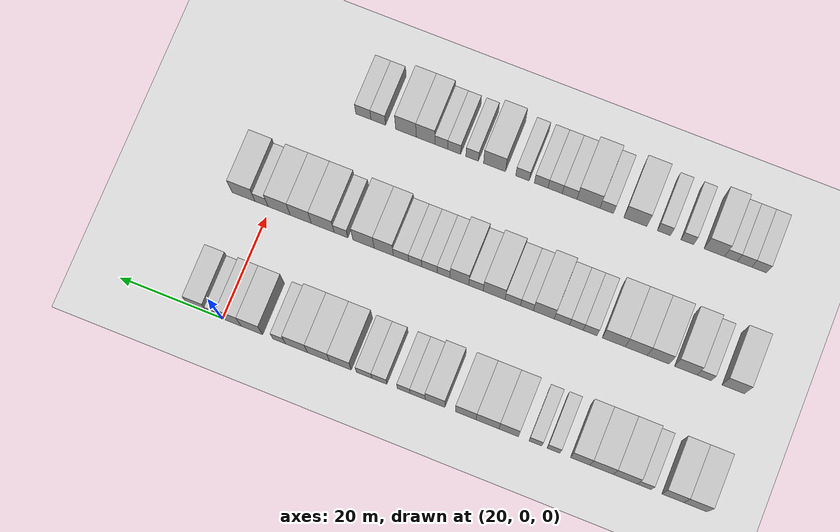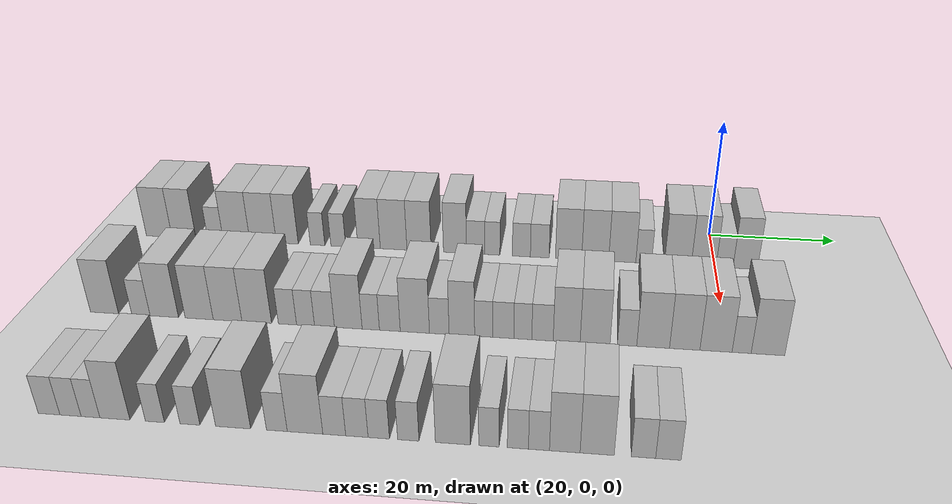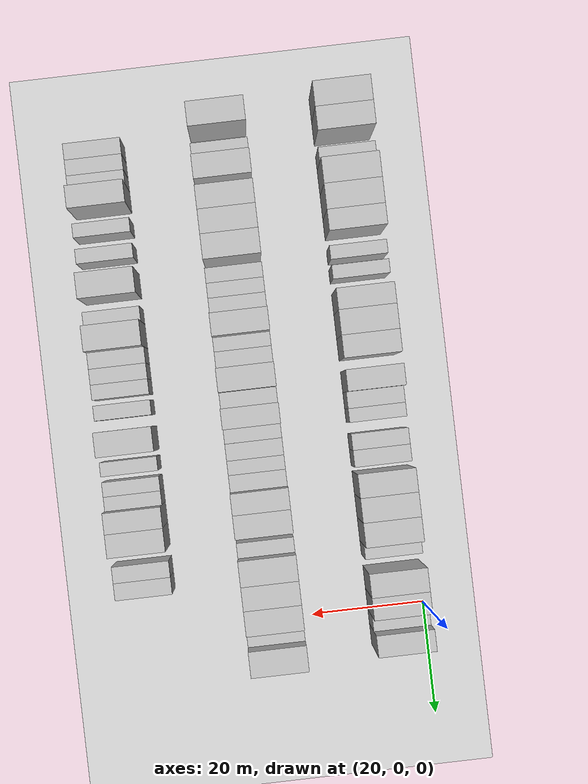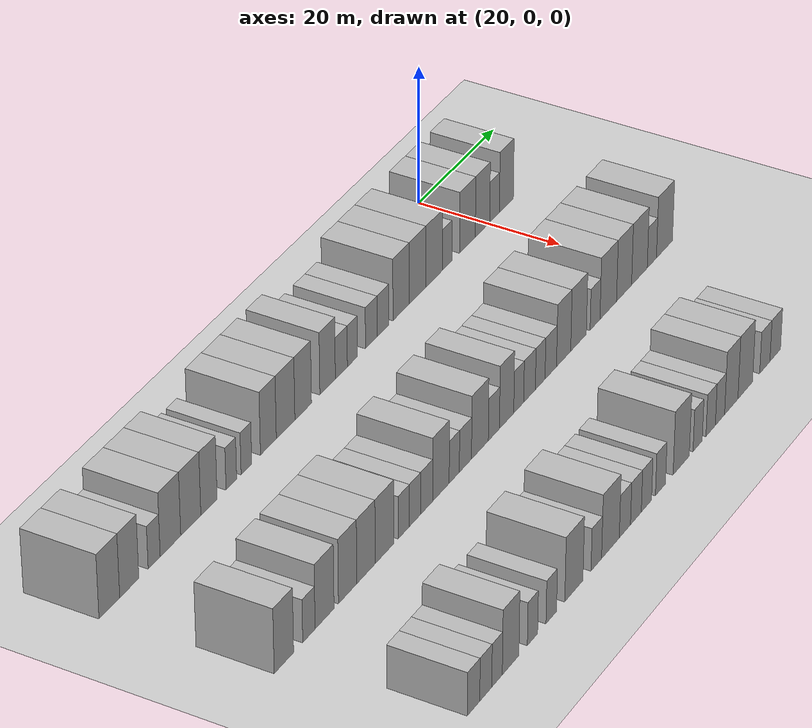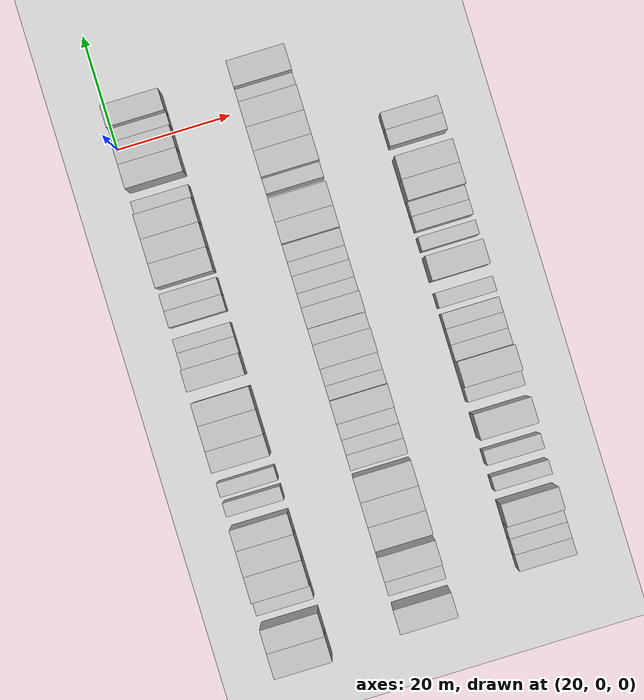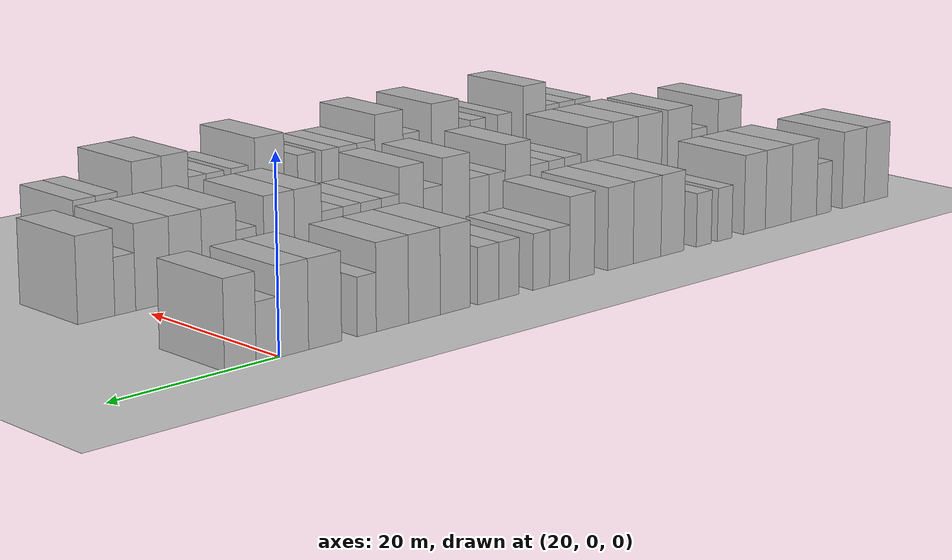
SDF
<sdf version="1.6">
 <world name="default">
  <include><name>ground_plane_1</name><uri>model://HANNAS_ground_plane</uri></include>
  <model name="building_77">
   <static>1</static>
   <pose>25.0000 -90.0252 0 0.000000 0.000000 0.000000</pose>
   <link name="link">
    <pose>0 0 4.50 0 0 0</pose>
    <collision name="collision"><geometry><box><size>10.0000 4.3675 9.0000</size></box></geometry></collision>
    <visual name="visual">
     <cast_shadows>0</cast_shadows>
     <geometry><box><size>10.0000 4.3675 9.0000</size></box></geometry>
     <material>
      <script>
       <uri>model://HANNAS_wall/materials/scripts</uri>
       <uri>model://HANNAS_wall/materials/textures</uri>
       <name>vrc/HANNAS_wall</name>
      </script>
     </material>
    </visual>
   </link>
  </model>
  <model name="building_78">
   <static>1</static>
   <pose>25.0000 -85.8086 0 0.000000 0.000000 0.000000</pose>
   <link name="link">
    <pose>0 0 4.50 0 0 0</pose>
    <collision name="collision"><geometry><box><size>10.0000 4.0658 9.0000</size></box></geometry></collision>
    <visual name="visual">
     <cast_shadows>0</cast_shadows>
     <geometry><box><size>10.0000 4.0658 9.0000</size></box></geometry>
     <material>
      <script>
       <uri>model://HANNAS_wall/materials/scripts</uri>
       <uri>model://HANNAS_wall/materials/textures</uri>
       <name>vrc/HANNAS_wall</name>
      </script>
     </material>
    </visual>
   </link>
  </model>
  <model name="building_79">
   <static>1</static>
   <pose>25.0000 -80.4712 0 0.000000 0.000000 0.000000</pose>
   <link name="link">
    <pose>0 0 3.00 0 0 0</pose>
    <collision name="collision"><geometry><box><size>10.0000 2.6091 6.0000</size></box></geometry></collision>
    <visual name="visual">
     <cast_shadows>0</cast_shadows>
     <geometry><box><size>10.0000 2.6091 6.0000</size></box></geometry>
     <material>
      <script>
       <uri>model://HANNAS_wall/materials/scripts</uri>
       <uri>model://HANNAS_wall/materials/textures</uri>
       <name>vrc/HANNAS_wall</name>
      </script>
     </material>
    </visual>
   </link>
  </model>
  <model name="building_80">
   <static>1</static>
   <pose>25.0000 -76.9223 0 0.000000 0.000000 0.000000</pose>
   <link name="link">
    <pose>0 0 4.50 0 0 0</pose>
    <collision name="collision"><geometry><box><size>10.0000 4.4886 9.0000</size></box></geometry></collision>
    <visual name="visual">
     <cast_shadows>0</cast_shadows>
     <geometry><box><size>10.0000 4.4886 9.0000</size></box></geometry>
     <material>
      <script>
       <uri>model://HANNAS_wall/materials/scripts</uri>
       <uri>model://HANNAS_wall/materials/textures</uri>
       <name>vrc/HANNAS_wall</name>
      </script>
     </material>
    </visual>
   </link>
  </model>
  <model name="building_81">
   <static>1</static>
   <pose>25.0000 -72.4578 0 0.000000 0.000000 0.000000</pose>
   <link name="link">
    <pose>0 0 4.50 0 0 0</pose>
    <collision name="collision"><geometry><box><size>10.0000 4.4404 9.0000</size></box></geometry></collision>
    <visual name="visual">
     <cast_shadows>0</cast_shadows>
     <geometry><box><size>10.0000 4.4404 9.0000</size></box></geometry>
     <material>
      <script>
       <uri>model://HANNAS_wall/materials/scripts</uri>
       <uri>model://HANNAS_wall/materials/textures</uri>
       <name>vrc/HANNAS_wall</name>
      </script>
     </material>
    </visual>
   </link>
  </model>
  <model name="building_82">
   <static>1</static>
   <pose>25.0000 -68.4177 0 0.000000 0.000000 0.000000</pose>
   <link name="link">
    <pose>0 0 4.50 0 0 0</pose>
    <collision name="collision"><geometry><box><size>10.0000 3.6399 9.0000</size></box></geometry></collision>
    <visual name="visual">
     <cast_shadows>0</cast_shadows>
     <geometry><box><size>10.0000 3.6399 9.0000</size></box></geometry>
     <material>
      <script>
       <uri>model://HANNAS_wall/materials/scripts</uri>
       <uri>model://HANNAS_wall/materials/textures</uri>
       <name>vrc/HANNAS_wall</name>
      </script>
     </material>
    </visual>
   </link>
  </model>
  <model name="building_83">
   <static>1</static>
   <pose>25.0000 -63.3919 0 0.000000 0.000000 0.000000</pose>
   <link name="link">
    <pose>0 0 3.00 0 0 0</pose>
    <collision name="collision"><geometry><box><size>10.0000 2.4118 6.0000</size></box></geometry></collision>
    <visual name="visual">
     <cast_shadows>0</cast_shadows>
     <geometry><box><size>10.0000 2.4118 6.0000</size></box></geometry>
     <material>
      <script>
       <uri>model://HANNAS_wall/materials/scripts</uri>
       <uri>model://HANNAS_wall/materials/textures</uri>
       <name>vrc/HANNAS_wall</name>
      </script>
     </material>
    </visual>
   </link>
  </model>
  <model name="building_84">
   <static>1</static>
   <pose>25.0000 -59.9668 0 0.000000 0.000000 0.000000</pose>
   <link name="link">
    <pose>0 0 3.00 0 0 0</pose>
    <collision name="collision"><geometry><box><size>10.0000 2.4384 6.0000</size></box></geometry></collision>
    <visual name="visual">
     <cast_shadows>0</cast_shadows>
     <geometry><box><size>10.0000 2.4384 6.0000</size></box></geometry>
     <material>
      <script>
       <uri>model://HANNAS_wall/materials/scripts</uri>
       <uri>model://HANNAS_wall/materials/textures</uri>
       <name>vrc/HANNAS_wall</name>
      </script>
     </material>
    </visual>
   </link>
  </model>
  <model name="building_85">
   <static>1</static>
   <pose>25.0000 -54.9041 0 0.000000 0.000000 0.000000</pose>
   <link name="link">
    <pose>0 0 4.50 0 0 0</pose>
    <collision name="collision"><geometry><box><size>10.0000 3.6870 9.0000</size></box></geometry></collision>
    <visual name="visual">
     <cast_shadows>0</cast_shadows>
     <geometry><box><size>10.0000 3.6870 9.0000</size></box></geometry>
     <material>
      <script>
       <uri>model://HANNAS_wall/materials/scripts</uri>
       <uri>model://HANNAS_wall/materials/textures</uri>
       <name>vrc/HANNAS_wall</name>
      </script>
     </material>
    </visual>
   </link>
  </model>
  <model name="building_86">
   <static>1</static>
   <pose>25.0000 -50.8852 0 0.000000 0.000000 0.000000</pose>
   <link name="link">
    <pose>0 0 4.50 0 0 0</pose>
    <collision name="collision"><geometry><box><size>10.0000 4.3508 9.0000</size></box></geometry></collision>
    <visual name="visual">
     <cast_shadows>0</cast_shadows>
     <geometry><box><size>10.0000 4.3508 9.0000</size></box></geometry>
     <material>
      <script>
       <uri>model://HANNAS_wall/materials/scripts</uri>
       <uri>model://HANNAS_wall/materials/textures</uri>
       <name>vrc/HANNAS_wall</name>
      </script>
     </material>
    </visual>
   </link>
  </model>
  <model name="building_87">
   <static>1</static>
   <pose>25.0000 -46.7449 0 0.000000 0.000000 0.000000</pose>
   <link name="link">
    <pose>0 0 4.50 0 0 0</pose>
    <collision name="collision"><geometry><box><size>10.0000 3.9298 9.0000</size></box></geometry></collision>
    <visual name="visual">
     <cast_shadows>0</cast_shadows>
     <geometry><box><size>10.0000 3.9298 9.0000</size></box></geometry>
     <material>
      <script>
       <uri>model://HANNAS_wall/materials/scripts</uri>
       <uri>model://HANNAS_wall/materials/textures</uri>
       <name>vrc/HANNAS_wall</name>
      </script>
     </material>
    </visual>
   </link>
  </model>
  <model name="building_88">
   <static>1</static>
   <pose>25.0000 -40.9170 0 0.000000 0.000000 0.000000</pose>
   <link name="link">
    <pose>0 0 4.50 0 0 0</pose>
    <collision name="collision"><geometry><box><size>10.0000 3.7259 9.0000</size></box></geometry></collision>
    <visual name="visual">
     <cast_shadows>0</cast_shadows>
     <geometry><box><size>10.0000 3.7259 9.0000</size></box></geometry>
     <material>
      <script>
       <uri>model://HANNAS_wall/materials/scripts</uri>
       <uri>model://HANNAS_wall/materials/textures</uri>
       <name>vrc/HANNAS_wall</name>
      </script>
     </material>
    </visual>
   </link>
  </model>
  <model name="building_89">
   <static>1</static>
   <pose>25.0000 -37.5912 0 0.000000 0.000000 0.000000</pose>
   <link name="link">
    <pose>0 0 3.00 0 0 0</pose>
    <collision name="collision"><geometry><box><size>10.0000 2.9258 6.0000</size></box></geometry></collision>
    <visual name="visual">
     <cast_shadows>0</cast_shadows>
     <geometry><box><size>10.0000 2.9258 6.0000</size></box></geometry>
     <material>
      <script>
       <uri>model://HANNAS_wall/materials/scripts</uri>
       <uri>model://HANNAS_wall/materials/textures</uri>
       <name>vrc/HANNAS_wall</name>
      </script>
     </material>
    </visual>
   </link>
  </model>
  <model name="building_90">
   <static>1</static>
   <pose>25.0000 -34.9142 0 0.000000 0.000000 0.000000</pose>
   <link name="link">
    <pose>0 0 3.00 0 0 0</pose>
    <collision name="collision"><geometry><box><size>10.0000 2.4282 6.0000</size></box></geometry></collision>
    <visual name="visual">
     <cast_shadows>0</cast_shadows>
     <geometry><box><size>10.0000 2.4282 6.0000</size></box></geometry>
     <material>
      <script>
       <uri>model://HANNAS_wall/materials/scripts</uri>
       <uri>model://HANNAS_wall/materials/textures</uri>
       <name>vrc/HANNAS_wall</name>
      </script>
     </material>
    </visual>
   </link>
  </model>
  <model name="building_91">
   <static>1</static>
   <pose>25.0000 -30.2657 0 0.000000 0.000000 0.000000</pose>
   <link name="link">
    <pose>0 0 3.00 0 0 0</pose>
    <collision name="collision"><geometry><box><size>10.0000 2.8688 6.0000</size></box></geometry></collision>
    <visual name="visual">
     <cast_shadows>0</cast_shadows>
     <geometry><box><size>10.0000 2.8688 6.0000</size></box></geometry>
     <material>
      <script>
       <uri>model://HANNAS_wall/materials/scripts</uri>
       <uri>model://HANNAS_wall/materials/textures</uri>
       <name>vrc/HANNAS_wall</name>
      </script>
     </material>
    </visual>
   </link>
  </model>
  <model name="building_92">
   <static>1</static>
   <pose>25.0000 -27.3481 0 0.000000 0.000000 0.000000</pose>
   <link name="link">
    <pose>0 0 3.00 0 0 0</pose>
    <collision name="collision"><geometry><box><size>10.0000 2.9665 6.0000</size></box></geometry></collision>
    <visual name="visual">
     <cast_shadows>0</cast_shadows>
     <geometry><box><size>10.0000 2.9665 6.0000</size></box></geometry>
     <material>
      <script>
       <uri>model://HANNAS_wall/materials/scripts</uri>
       <uri>model://HANNAS_wall/materials/textures</uri>
       <name>vrc/HANNAS_wall</name>
      </script>
     </material>
    </visual>
   </link>
  </model>
  <model name="building_93">
   <static>1</static>
   <pose>25.0000 -22.7915 0 0.000000 0.000000 0.000000</pose>
   <link name="link">
    <pose>0 0 4.50 0 0 0</pose>
    <collision name="collision"><geometry><box><size>10.0000 4.1466 9.0000</size></box></geometry></collision>
    <visual name="visual">
     <cast_shadows>0</cast_shadows>
     <geometry><box><size>10.0000 4.1466 9.0000</size></box></geometry>
     <material>
      <script>
       <uri>model://HANNAS_wall/materials/scripts</uri>
       <uri>model://HANNAS_wall/materials/textures</uri>
       <name>vrc/HANNAS_wall</name>
      </script>
     </material>
    </visual>
   </link>
  </model>
  <model name="building_94">
   <static>1</static>
   <pose>25.0000 -18.5953 0 0.000000 0.000000 0.000000</pose>
   <link name="link">
    <pose>0 0 4.50 0 0 0</pose>
    <collision name="collision"><geometry><box><size>10.0000 4.2456 9.0000</size></box></geometry></collision>
    <visual name="visual">
     <cast_shadows>0</cast_shadows>
     <geometry><box><size>10.0000 4.2456 9.0000</size></box></geometry>
     <material>
      <script>
       <uri>model://HANNAS_wall/materials/scripts</uri>
       <uri>model://HANNAS_wall/materials/textures</uri>
       <name>vrc/HANNAS_wall</name>
      </script>
     </material>
    </visual>
   </link>
  </model>
  <model name="building_95">
   <static>1</static>
   <pose>25.0000 -14.3478 0 0.000000 0.000000 0.000000</pose>
   <link name="link">
    <pose>0 0 4.50 0 0 0</pose>
    <collision name="collision"><geometry><box><size>10.0000 4.2494 9.0000</size></box></geometry></collision>
    <visual name="visual">
     <cast_shadows>0</cast_shadows>
     <geometry><box><size>10.0000 4.2494 9.0000</size></box></geometry>
     <material>
      <script>
       <uri>model://HANNAS_wall/materials/scripts</uri>
       <uri>model://HANNAS_wall/materials/textures</uri>
       <name>vrc/HANNAS_wall</name>
      </script>
     </material>
    </visual>
   </link>
  </model>
  <model name="building_96">
   <static>1</static>
   <pose>25.0000 -10.9969 0 0.000000 0.000000 0.000000</pose>
   <link name="link">
    <pose>0 0 3.00 0 0 0</pose>
    <collision name="collision"><geometry><box><size>10.0000 2.4524 6.0000</size></box></geometry></collision>
    <visual name="visual">
     <cast_shadows>0</cast_shadows>
     <geometry><box><size>10.0000 2.4524 6.0000</size></box></geometry>
     <material>
      <script>
       <uri>model://HANNAS_wall/materials/scripts</uri>
       <uri>model://HANNAS_wall/materials/textures</uri>
       <name>vrc/HANNAS_wall</name>
      </script>
     </material>
    </visual>
   </link>
  </model>
  <model name="building_97">
   <static>1</static>
   <pose>25.0000 -5.6992 0 0.000000 0.000000 0.000000</pose>
   <link name="link">
    <pose>0 0 4.50 0 0 0</pose>
    <collision name="collision"><geometry><box><size>10.0000 4.1429 9.0000</size></box></geometry></collision>
    <visual name="visual">
     <cast_shadows>0</cast_shadows>
     <geometry><box><size>10.0000 4.1429 9.0000</size></box></geometry>
     <material>
      <script>
       <uri>model://HANNAS_wall/materials/scripts</uri>
       <uri>model://HANNAS_wall/materials/textures</uri>
       <name>vrc/HANNAS_wall</name>
      </script>
     </material>
    </visual>
   </link>
  </model>
  <model name="building_98">
   <static>1</static>
   <pose>25.0000 -1.7094 0 0.000000 0.000000 0.000000</pose>
   <link name="link">
    <pose>0 0 4.50 0 0 0</pose>
    <collision name="collision"><geometry><box><size>10.0000 3.8367 9.0000</size></box></geometry></collision>
    <visual name="visual">
     <cast_shadows>0</cast_shadows>
     <geometry><box><size>10.0000 3.8367 9.0000</size></box></geometry>
     <material>
      <script>
       <uri>model://HANNAS_wall/materials/scripts</uri>
       <uri>model://HANNAS_wall/materials/textures</uri>
       <name>vrc/HANNAS_wall</name>
      </script>
     </material>
    </visual>
   </link>
  </model>
  <model name="building_99">
   <static>1</static>
   <pose>25.0000 1.5023 0 0.000000 0.000000 0.000000</pose>
   <link name="link">
    <pose>0 0 3.00 0 0 0</pose>
    <collision name="collision"><geometry><box><size>10.0000 2.5868 6.0000</size></box></geometry></collision>
    <visual name="visual">
     <cast_shadows>0</cast_shadows>
     <geometry><box><size>10.0000 2.5868 6.0000</size></box></geometry>
     <material>
      <script>
       <uri>model://HANNAS_wall/materials/scripts</uri>
       <uri>model://HANNAS_wall/materials/textures</uri>
       <name>vrc/HANNAS_wall</name>
      </script>
     </material>
    </visual>
   </link>
  </model>
  <model name="building_100">
   <static>1</static>
   <pose>25.0000 4.6795 0 0.000000 0.000000 0.000000</pose>
   <link name="link">
    <pose>0 0 4.50 0 0 0</pose>
    <collision name="collision"><geometry><box><size>10.0000 3.7677 9.0000</size></box></geometry></collision>
    <visual name="visual">
     <cast_shadows>0</cast_shadows>
     <geometry><box><size>10.0000 3.7677 9.0000</size></box></geometry>
     <material>
      <script>
       <uri>model://HANNAS_wall/materials/scripts</uri>
       <uri>model://HANNAS_wall/materials/textures</uri>
       <name>vrc/HANNAS_wall</name>
      </script>
     </material>
    </visual>
   </link>
  </model>
  <model name="building_272">
   <static>1</static>
   <pose>47.0000 -89.0937 0 0.000000 0.000000 0.000000</pose>
   <link name="link">
    <pose>0 0 4.50 0 0 0</pose>
    <collision name="collision"><geometry><box><size>10.0000 4.2462 9.0000</size></box></geometry></collision>
    <visual name="visual">
     <cast_shadows>0</cast_shadows>
     <geometry><box><size>10.0000 4.2462 9.0000</size></box></geometry>
     <material>
      <script>
       <uri>model://HANNAS_wall/materials/scripts</uri>
       <uri>model://HANNAS_wall/materials/textures</uri>
       <name>vrc/HANNAS_wall</name>
      </script>
     </material>
    </visual>
   </link>
  </model>
  <model name="building_273">
   <static>1</static>
   <pose>47.0000 -83.5964 0 0.000000 0.000000 0.000000</pose>
   <link name="link">
    <pose>0 0 3.00 0 0 0</pose>
    <collision name="collision"><geometry><box><size>10.0000 2.7483 6.0000</size></box></geometry></collision>
    <visual name="visual">
     <cast_shadows>0</cast_shadows>
     <geometry><box><size>10.0000 2.7483 6.0000</size></box></geometry>
     <material>
      <script>
       <uri>model://HANNAS_wall/materials/scripts</uri>
       <uri>model://HANNAS_wall/materials/textures</uri>
       <name>vrc/HANNAS_wall</name>
      </script>
     </material>
    </visual>
   </link>
  </model>
  <model name="building_274">
   <static>1</static>
   <pose>47.0000 -80.0994 0 0.000000 0.000000 0.000000</pose>
   <link name="link">
    <pose>0 0 4.50 0 0 0</pose>
    <collision name="collision"><geometry><box><size>10.0000 4.2457 9.0000</size></box></geometry></collision>
    <visual name="visual">
     <cast_shadows>0</cast_shadows>
     <geometry><box><size>10.0000 4.2457 9.0000</size></box></geometry>
     <material>
      <script>
       <uri>model://HANNAS_wall/materials/scripts</uri>
       <uri>model://HANNAS_wall/materials/textures</uri>
       <name>vrc/HANNAS_wall</name>
      </script>
     </material>
    </visual>
   </link>
  </model>
  <model name="building_275">
   <static>1</static>
   <pose>47.0000 -74.8886 0 0.000000 0.000000 0.000000</pose>
   <link name="link">
    <pose>0 0 4.50 0 0 0</pose>
    <collision name="collision"><geometry><box><size>10.0000 4.1760 9.0000</size></box></geometry></collision>
    <visual name="visual">
     <cast_shadows>0</cast_shadows>
     <geometry><box><size>10.0000 4.1760 9.0000</size></box></geometry>
     <material>
      <script>
       <uri>model://HANNAS_wall/materials/scripts</uri>
       <uri>model://HANNAS_wall/materials/textures</uri>
       <name>vrc/HANNAS_wall</name>
      </script>
     </material>
    </visual>
   </link>
  </model>
  <model name="building_276">
   <static>1</static>
   <pose>47.0000 -70.6801 0 0.000000 0.000000 0.000000</pose>
   <link name="link">
    <pose>0 0 4.50 0 0 0</pose>
    <collision name="collision"><geometry><box><size>10.0000 4.2410 9.0000</size></box></geometry></collision>
    <visual name="visual">
     <cast_shadows>0</cast_shadows>
     <geometry><box><size>10.0000 4.2410 9.0000</size></box></geometry>
     <material>
      <script>
       <uri>model://HANNAS_wall/materials/scripts</uri>
       <uri>model://HANNAS_wall/materials/textures</uri>
       <name>vrc/HANNAS_wall</name>
      </script>
     </material>
    </visual>
   </link>
  </model>
  <model name="building_277">
   <static>1</static>
   <pose>47.0000 -66.3810 0 0.000000 0.000000 0.000000</pose>
   <link name="link">
    <pose>0 0 4.50 0 0 0</pose>
    <collision name="collision"><geometry><box><size>10.0000 4.3572 9.0000</size></box></geometry></collision>
    <visual name="visual">
     <cast_shadows>0</cast_shadows>
     <geometry><box><size>10.0000 4.3572 9.0000</size></box></geometry>
     <material>
      <script>
       <uri>model://HANNAS_wall/materials/scripts</uri>
       <uri>model://HANNAS_wall/materials/textures</uri>
       <name>vrc/HANNAS_wall</name>
      </script>
     </material>
    </visual>
   </link>
  </model>
  <model name="building_278">
   <static>1</static>
   <pose>47.0000 -61.8732 0 0.000000 0.000000 0.000000</pose>
   <link name="link">
    <pose>0 0 3.00 0 0 0</pose>
    <collision name="collision"><geometry><box><size>10.0000 2.6585 6.0000</size></box></geometry></collision>
    <visual name="visual">
     <cast_shadows>0</cast_shadows>
     <geometry><box><size>10.0000 2.6585 6.0000</size></box></geometry>
     <material>
      <script>
       <uri>model://HANNAS_wall/materials/scripts</uri>
       <uri>model://HANNAS_wall/materials/textures</uri>
       <name>vrc/HANNAS_wall</name>
      </script>
     </material>
    </visual>
   </link>
  </model>
  <model name="building_279">
   <static>1</static>
   <pose>47.0000 -59.2358 0 0.000000 0.000000 0.000000</pose>
   <link name="link">
    <pose>0 0 3.00 0 0 0</pose>
    <collision name="collision"><geometry><box><size>10.0000 2.6162 6.0000</size></box></geometry></collision>
    <visual name="visual">
     <cast_shadows>0</cast_shadows>
     <geometry><box><size>10.0000 2.6162 6.0000</size></box></geometry>
     <material>
      <script>
       <uri>model://HANNAS_wall/materials/scripts</uri>
       <uri>model://HANNAS_wall/materials/textures</uri>
       <name>vrc/HANNAS_wall</name>
      </script>
     </material>
    </visual>
   </link>
  </model>
  <model name="building_280">
   <static>1</static>
   <pose>47.0000 -56.4827 0 0.000000 0.000000 0.000000</pose>
   <link name="link">
    <pose>0 0 3.00 0 0 0</pose>
    <collision name="collision"><geometry><box><size>10.0000 2.8901 6.0000</size></box></geometry></collision>
    <visual name="visual">
     <cast_shadows>0</cast_shadows>
     <geometry><box><size>10.0000 2.8901 6.0000</size></box></geometry>
     <material>
      <script>
       <uri>model://HANNAS_wall/materials/scripts</uri>
       <uri>model://HANNAS_wall/materials/textures</uri>
       <name>vrc/HANNAS_wall</name>
      </script>
     </material>
    </visual>
   </link>
  </model>
  <model name="building_281">
   <static>1</static>
   <pose>47.0000 -53.0349 0 0.000000 0.000000 0.000000</pose>
   <link name="link">
    <pose>0 0 4.50 0 0 0</pose>
    <collision name="collision"><geometry><box><size>10.0000 4.0054 9.0000</size></box></geometry></collision>
    <visual name="visual">
     <cast_shadows>0</cast_shadows>
     <geometry><box><size>10.0000 4.0054 9.0000</size></box></geometry>
     <material>
      <script>
       <uri>model://HANNAS_wall/materials/scripts</uri>
       <uri>model://HANNAS_wall/materials/textures</uri>
       <name>vrc/HANNAS_wall</name>
      </script>
     </material>
    </visual>
   </link>
  </model>
  <model name="building_282">
   <static>1</static>
   <pose>47.0000 -49.7893 0 0.000000 0.000000 0.000000</pose>
   <link name="link">
    <pose>0 0 3.00 0 0 0</pose>
    <collision name="collision"><geometry><box><size>10.0000 2.4858 6.0000</size></box></geometry></collision>
    <visual name="visual">
     <cast_shadows>0</cast_shadows>
     <geometry><box><size>10.0000 2.4858 6.0000</size></box></geometry>
     <material>
      <script>
       <uri>model://HANNAS_wall/materials/scripts</uri>
       <uri>model://HANNAS_wall/materials/textures</uri>
       <name>vrc/HANNAS_wall</name>
      </script>
     </material>
    </visual>
   </link>
  </model>
  <model name="building_283">
   <static>1</static>
   <pose>47.0000 -47.0550 0 0.000000 0.000000 0.000000</pose>
   <link name="link">
    <pose>0 0 3.00 0 0 0</pose>
    <collision name="collision"><geometry><box><size>10.0000 2.9827 6.0000</size></box></geometry></collision>
    <visual name="visual">
     <cast_shadows>0</cast_shadows>
     <geometry><box><size>10.0000 2.9827 6.0000</size></box></geometry>
     <material>
      <script>
       <uri>model://HANNAS_wall/materials/scripts</uri>
       <uri>model://HANNAS_wall/materials/textures</uri>
       <name>vrc/HANNAS_wall</name>
      </script>
     </material>
    </visual>
   </link>
  </model>
  <model name="building_284">
   <static>1</static>
   <pose>47.0000 -43.4797 0 0.000000 0.000000 0.000000</pose>
   <link name="link">
    <pose>0 0 4.50 0 0 0</pose>
    <collision name="collision"><geometry><box><size>10.0000 4.1681 9.0000</size></box></geometry></collision>
    <visual name="visual">
     <cast_shadows>0</cast_shadows>
     <geometry><box><size>10.0000 4.1681 9.0000</size></box></geometry>
     <material>
      <script>
       <uri>model://HANNAS_wall/materials/scripts</uri>
       <uri>model://HANNAS_wall/materials/textures</uri>
       <name>vrc/HANNAS_wall</name>
      </script>
     </material>
    </visual>
   </link>
  </model>
  <model name="building_285">
   <static>1</static>
   <pose>47.0000 -40.0002 0 0.000000 0.000000 0.000000</pose>
   <link name="link">
    <pose>0 0 3.00 0 0 0</pose>
    <collision name="collision"><geometry><box><size>10.0000 2.7909 6.0000</size></box></geometry></collision>
    <visual name="visual">
     <cast_shadows>0</cast_shadows>
     <geometry><box><size>10.0000 2.7909 6.0000</size></box></geometry>
     <material>
      <script>
       <uri>model://HANNAS_wall/materials/scripts</uri>
       <uri>model://HANNAS_wall/materials/textures</uri>
       <name>vrc/HANNAS_wall</name>
      </script>
     </material>
    </visual>
   </link>
  </model>
  <model name="building_286">
   <static>1</static>
   <pose>47.0000 -36.8000 0 0.000000 0.000000 0.000000</pose>
   <link name="link">
    <pose>0 0 4.50 0 0 0</pose>
    <collision name="collision"><geometry><box><size>10.0000 3.6094 9.0000</size></box></geometry></collision>
    <visual name="visual">
     <cast_shadows>0</cast_shadows>
     <geometry><box><size>10.0000 3.6094 9.0000</size></box></geometry>
     <material>
      <script>
       <uri>model://HANNAS_wall/materials/scripts</uri>
       <uri>model://HANNAS_wall/materials/textures</uri>
       <name>vrc/HANNAS_wall</name>
      </script>
     </material>
    </visual>
   </link>
  </model>
  <model name="building_287">
   <static>1</static>
   <pose>47.0000 -33.7298 0 0.000000 0.000000 0.000000</pose>
   <link name="link">
    <pose>0 0 3.00 0 0 0</pose>
    <collision name="collision"><geometry><box><size>10.0000 2.5310 6.0000</size></box></geometry></collision>
    <visual name="visual">
     <cast_shadows>0</cast_shadows>
     <geometry><box><size>10.0000 2.5310 6.0000</size></box></geometry>
     <material>
      <script>
       <uri>model://HANNAS_wall/materials/scripts</uri>
       <uri>model://HANNAS_wall/materials/textures</uri>
       <name>vrc/HANNAS_wall</name>
      </script>
     </material>
    </visual>
   </link>
  </model>
  <model name="building_288">
   <static>1</static>
   <pose>47.0000 -30.9686 0 0.000000 0.000000 0.000000</pose>
   <link name="link">
    <pose>0 0 3.00 0 0 0</pose>
    <collision name="collision"><geometry><box><size>10.0000 2.9913 6.0000</size></box></geometry></collision>
    <visual name="visual">
     <cast_shadows>0</cast_shadows>
     <geometry><box><size>10.0000 2.9913 6.0000</size></box></geometry>
     <material>
      <script>
       <uri>model://HANNAS_wall/materials/scripts</uri>
       <uri>model://HANNAS_wall/materials/textures</uri>
       <name>vrc/HANNAS_wall</name>
      </script>
     </material>
    </visual>
   </link>
  </model>
  <model name="building_289">
   <static>1</static>
   <pose>47.0000 -28.2254 0 0.000000 0.000000 0.000000</pose>
   <link name="link">
    <pose>0 0 3.00 0 0 0</pose>
    <collision name="collision"><geometry><box><size>10.0000 2.4951 6.0000</size></box></geometry></collision>
    <visual name="visual">
     <cast_shadows>0</cast_shadows>
     <geometry><box><size>10.0000 2.4951 6.0000</size></box></geometry>
     <material>
      <script>
       <uri>model://HANNAS_wall/materials/scripts</uri>
       <uri>model://HANNAS_wall/materials/textures</uri>
       <name>vrc/HANNAS_wall</name>
      </script>
     </material>
    </visual>
   </link>
  </model>
  <model name="building_290">
   <static>1</static>
   <pose>47.0000 -25.4868 0 0.000000 0.000000 0.000000</pose>
   <link name="link">
    <pose>0 0 3.00 0 0 0</pose>
    <collision name="collision"><geometry><box><size>10.0000 2.9822 6.0000</size></box></geometry></collision>
    <visual name="visual">
     <cast_shadows>0</cast_shadows>
     <geometry><box><size>10.0000 2.9822 6.0000</size></box></geometry>
     <material>
      <script>
       <uri>model://HANNAS_wall/materials/scripts</uri>
       <uri>model://HANNAS_wall/materials/textures</uri>
       <name>vrc/HANNAS_wall</name>
      </script>
     </material>
    </visual>
   </link>
  </model>
  <model name="building_291">
   <static>1</static>
   <pose>47.0000 -22.1303 0 0.000000 0.000000 0.000000</pose>
   <link name="link">
    <pose>0 0 4.50 0 0 0</pose>
    <collision name="collision"><geometry><box><size>10.0000 3.7307 9.0000</size></box></geometry></collision>
    <visual name="visual">
     <cast_shadows>0</cast_shadows>
     <geometry><box><size>10.0000 3.7307 9.0000</size></box></geometry>
     <material>
      <script>
       <uri>model://HANNAS_wall/materials/scripts</uri>
       <uri>model://HANNAS_wall/materials/textures</uri>
       <name>vrc/HANNAS_wall</name>
      </script>
     </material>
    </visual>
   </link>
  </model>
  <model name="building_292">
   <static>1</static>
   <pose>47.0000 -18.1981 0 0.000000 0.000000 0.000000</pose>
   <link name="link">
    <pose>0 0 4.50 0 0 0</pose>
    <collision name="collision"><geometry><box><size>10.0000 4.1337 9.0000</size></box></geometry></collision>
    <visual name="visual">
     <cast_shadows>0</cast_shadows>
     <geometry><box><size>10.0000 4.1337 9.0000</size></box></geometry>
     <material>
      <script>
       <uri>model://HANNAS_wall/materials/scripts</uri>
       <uri>model://HANNAS_wall/materials/textures</uri>
       <name>vrc/HANNAS_wall</name>
      </script>
     </material>
    </visual>
   </link>
  </model>
  <model name="building_293">
   <static>1</static>
   <pose>47.0000 -13.8051 0 0.000000 0.000000 0.000000</pose>
   <link name="link">
    <pose>0 0 3.00 0 0 0</pose>
    <collision name="collision"><geometry><box><size>10.0000 2.6522 6.0000</size></box></geometry></collision>
    <visual name="visual">
     <cast_shadows>0</cast_shadows>
     <geometry><box><size>10.0000 2.6522 6.0000</size></box></geometry>
     <material>
      <script>
       <uri>model://HANNAS_wall/materials/scripts</uri>
       <uri>model://HANNAS_wall/materials/textures</uri>
       <name>vrc/HANNAS_wall</name>
      </script>
     </material>
    </visual>
   </link>
  </model>
  <model name="building_294">
   <static>1</static>
   <pose>47.0000 -10.2383 0 0.000000 0.000000 0.000000</pose>
   <link name="link">
    <pose>0 0 4.50 0 0 0</pose>
    <collision name="collision"><geometry><box><size>10.0000 4.4815 9.0000</size></box></geometry></collision>
    <visual name="visual">
     <cast_shadows>0</cast_shadows>
     <geometry><box><size>10.0000 4.4815 9.0000</size></box></geometry>
     <material>
      <script>
       <uri>model://HANNAS_wall/materials/scripts</uri>
       <uri>model://HANNAS_wall/materials/textures</uri>
       <name>vrc/HANNAS_wall</name>
      </script>
     </material>
    </visual>
   </link>
  </model>
  <model name="building_295">
   <static>1</static>
   <pose>47.0000 -5.9371 0 0.000000 0.000000 0.000000</pose>
   <link name="link">
    <pose>0 0 4.50 0 0 0</pose>
    <collision name="collision"><geometry><box><size>10.0000 4.1210 9.0000</size></box></geometry></collision>
    <visual name="visual">
     <cast_shadows>0</cast_shadows>
     <geometry><box><size>10.0000 4.1210 9.0000</size></box></geometry>
     <material>
      <script>
       <uri>model://HANNAS_wall/materials/scripts</uri>
       <uri>model://HANNAS_wall/materials/textures</uri>
       <name>vrc/HANNAS_wall</name>
      </script>
     </material>
    </visual>
   </link>
  </model>
  <model name="building_296">
   <static>1</static>
   <pose>47.0000 -1.7068 0 0.000000 0.000000 0.000000</pose>
   <link name="link">
    <pose>0 0 4.50 0 0 0</pose>
    <collision name="collision"><geometry><box><size>10.0000 4.3395 9.0000</size></box></geometry></collision>
    <visual name="visual">
     <cast_shadows>0</cast_shadows>
     <geometry><box><size>10.0000 4.3395 9.0000</size></box></geometry>
     <material>
      <script>
       <uri>model://HANNAS_wall/materials/scripts</uri>
       <uri>model://HANNAS_wall/materials/textures</uri>
       <name>vrc/HANNAS_wall</name>
      </script>
     </material>
    </visual>
   </link>
  </model>
  <model name="building_297">
   <static>1</static>
   <pose>47.0000 1.7441 0 0.000000 0.000000 0.000000</pose>
   <link name="link">
    <pose>0 0 3.00 0 0 0</pose>
    <collision name="collision"><geometry><box><size>10.0000 2.5624 6.0000</size></box></geometry></collision>
    <visual name="visual">
     <cast_shadows>0</cast_shadows>
     <geometry><box><size>10.0000 2.5624 6.0000</size></box></geometry>
     <material>
      <script>
       <uri>model://HANNAS_wall/materials/scripts</uri>
       <uri>model://HANNAS_wall/materials/textures</uri>
       <name>vrc/HANNAS_wall</name>
      </script>
     </material>
    </visual>
   </link>
  </model>
  <model name="building_298">
   <static>1</static>
   <pose>47.0000 5.2752 0 0.000000 0.000000 0.000000</pose>
   <link name="link">
    <pose>0 0 4.50 0 0 0</pose>
    <collision name="collision"><geometry><box><size>10.0000 4.4999 9.0000</size></box></geometry></collision>
    <visual name="visual">
     <cast_shadows>0</cast_shadows>
     <geometry><box><size>10.0000 4.4999 9.0000</size></box></geometry>
     <material>
      <script>
       <uri>model://HANNAS_wall/materials/scripts</uri>
       <uri>model://HANNAS_wall/materials/textures</uri>
       <name>vrc/HANNAS_wall</name>
      </script>
     </material>
    </visual>
   </link>
  </model>
  <model name="building_467">
   <static>1</static>
   <pose>69.0000 -86.0161 0 0.000000 0.000000 0.000000</pose>
   <link name="link">
    <pose>0 0 3.00 0 0 0</pose>
    <collision name="collision"><geometry><box><size>10.0000 2.8555 6.0000</size></box></geometry></collision>
    <visual name="visual">
     <cast_shadows>0</cast_shadows>
     <geometry><box><size>10.0000 2.8555 6.0000</size></box></geometry>
     <material>
      <script>
       <uri>model://HANNAS_wall/materials/scripts</uri>
       <uri>model://HANNAS_wall/materials/textures</uri>
       <name>vrc/HANNAS_wall</name>
      </script>
     </material>
    </visual>
   </link>
  </model>
  <model name="building_468">
   <static>1</static>
   <pose>69.0000 -83.2017 0 0.000000 0.000000 0.000000</pose>
   <link name="link">
    <pose>0 0 3.00 0 0 0</pose>
    <collision name="collision"><geometry><box><size>10.0000 2.7732 6.0000</size></box></geometry></collision>
    <visual name="visual">
     <cast_shadows>0</cast_shadows>
     <geometry><box><size>10.0000 2.7732 6.0000</size></box></geometry>
     <material>
      <script>
       <uri>model://HANNAS_wall/materials/scripts</uri>
       <uri>model://HANNAS_wall/materials/textures</uri>
       <name>vrc/HANNAS_wall</name>
      </script>
     </material>
    </visual>
   </link>
  </model>
  <model name="building_469">
   <static>1</static>
   <pose>69.0000 -80.5906 0 0.000000 0.000000 0.000000</pose>
   <link name="link">
    <pose>0 0 3.00 0 0 0</pose>
    <collision name="collision"><geometry><box><size>10.0000 2.4490 6.0000</size></box></geometry></collision>
    <visual name="visual">
     <cast_shadows>0</cast_shadows>
     <geometry><box><size>10.0000 2.4490 6.0000</size></box></geometry>
     <material>
      <script>
       <uri>model://HANNAS_wall/materials/scripts</uri>
       <uri>model://HANNAS_wall/materials/textures</uri>
       <name>vrc/HANNAS_wall</name>
      </script>
     </material>
    </visual>
   </link>
  </model>
  <model name="building_470">
   <static>1</static>
   <pose>69.0000 -77.4160 0 0.000000 0.000000 0.000000</pose>
   <link name="link">
    <pose>0 0 4.50 0 0 0</pose>
    <collision name="collision"><geometry><box><size>10.0000 3.9002 9.0000</size></box></geometry></collision>
    <visual name="visual">
     <cast_shadows>0</cast_shadows>
     <geometry><box><size>10.0000 3.9002 9.0000</size></box></geometry>
     <material>
      <script>
       <uri>model://HANNAS_wall/materials/scripts</uri>
       <uri>model://HANNAS_wall/materials/textures</uri>
       <name>vrc/HANNAS_wall</name>
      </script>
     </material>
    </visual>
   </link>
  </model>
  <model name="building_471">
   <static>1</static>
   <pose>69.0000 -72.2394 0 0.000000 0.000000 0.000000</pose>
   <link name="link">
    <pose>0 0 3.00 0 0 0</pose>
    <collision name="collision"><geometry><box><size>10.0000 2.4530 6.0000</size></box></geometry></collision>
    <visual name="visual">
     <cast_shadows>0</cast_shadows>
     <geometry><box><size>10.0000 2.4530 6.0000</size></box></geometry>
     <material>
      <script>
       <uri>model://HANNAS_wall/materials/scripts</uri>
       <uri>model://HANNAS_wall/materials/textures</uri>
       <name>vrc/HANNAS_wall</name>
      </script>
     </material>
    </visual>
   </link>
  </model>
  <model name="building_472">
   <static>1</static>
   <pose>69.0000 -67.7336 0 0.000000 0.000000 0.000000</pose>
   <link name="link">
    <pose>0 0 3.00 0 0 0</pose>
    <collision name="collision"><geometry><box><size>10.0000 2.5587 6.0000</size></box></geometry></collision>
    <visual name="visual">
     <cast_shadows>0</cast_shadows>
     <geometry><box><size>10.0000 2.5587 6.0000</size></box></geometry>
     <material>
      <script>
       <uri>model://HANNAS_wall/materials/scripts</uri>
       <uri>model://HANNAS_wall/materials/textures</uri>
       <name>vrc/HANNAS_wall</name>
      </script>
     </material>
    </visual>
   </link>
  </model>
  <model name="building_473">
   <static>1</static>
   <pose>69.0000 -62.2292 0 0.000000 0.000000 0.000000</pose>
   <link name="link">
    <pose>0 0 4.50 0 0 0</pose>
    <collision name="collision"><geometry><box><size>10.0000 4.4500 9.0000</size></box></geometry></collision>
    <visual name="visual">
     <cast_shadows>0</cast_shadows>
     <geometry><box><size>10.0000 4.4500 9.0000</size></box></geometry>
     <material>
      <script>
       <uri>model://HANNAS_wall/materials/scripts</uri>
       <uri>model://HANNAS_wall/materials/textures</uri>
       <name>vrc/HANNAS_wall</name>
      </script>
     </material>
    </visual>
   </link>
  </model>
  <model name="building_474">
   <static>1</static>
   <pose>69.0000 -56.6907 0 0.000000 0.000000 0.000000</pose>
   <link name="link">
    <pose>0 0 3.00 0 0 0</pose>
    <collision name="collision"><geometry><box><size>10.0000 2.6269 6.0000</size></box></geometry></collision>
    <visual name="visual">
     <cast_shadows>0</cast_shadows>
     <geometry><box><size>10.0000 2.6269 6.0000</size></box></geometry>
     <material>
      <script>
       <uri>model://HANNAS_wall/materials/scripts</uri>
       <uri>model://HANNAS_wall/materials/textures</uri>
       <name>vrc/HANNAS_wall</name>
      </script>
     </material>
    </visual>
   </link>
  </model>
  <model name="building_475">
   <static>1</static>
   <pose>69.0000 -53.1499 0 0.000000 0.000000 0.000000</pose>
   <link name="link">
    <pose>0 0 4.50 0 0 0</pose>
    <collision name="collision"><geometry><box><size>10.0000 4.4547 9.0000</size></box></geometry></collision>
    <visual name="visual">
     <cast_shadows>0</cast_shadows>
     <geometry><box><size>10.0000 4.4547 9.0000</size></box></geometry>
     <material>
      <script>
       <uri>model://HANNAS_wall/materials/scripts</uri>
       <uri>model://HANNAS_wall/materials/textures</uri>
       <name>vrc/HANNAS_wall</name>
      </script>
     </material>
    </visual>
   </link>
  </model>
  <model name="building_476">
   <static>1</static>
   <pose>69.0000 -49.4957 0 0.000000 0.000000 0.000000</pose>
   <link name="link">
    <pose>0 0 3.00 0 0 0</pose>
    <collision name="collision"><geometry><box><size>10.0000 2.8538 6.0000</size></box></geometry></collision>
    <visual name="visual">
     <cast_shadows>0</cast_shadows>
     <geometry><box><size>10.0000 2.8538 6.0000</size></box></geometry>
     <material>
      <script>
       <uri>model://HANNAS_wall/materials/scripts</uri>
       <uri>model://HANNAS_wall/materials/textures</uri>
       <name>vrc/HANNAS_wall</name>
      </script>
     </material>
    </visual>
   </link>
  </model>
  <model name="building_477">
   <static>1</static>
   <pose>69.0000 -46.6842 0 0.000000 0.000000 0.000000</pose>
   <link name="link">
    <pose>0 0 3.00 0 0 0</pose>
    <collision name="collision"><geometry><box><size>10.0000 2.7693 6.0000</size></box></geometry></collision>
    <visual name="visual">
     <cast_shadows>0</cast_shadows>
     <geometry><box><size>10.0000 2.7693 6.0000</size></box></geometry>
     <material>
      <script>
       <uri>model://HANNAS_wall/materials/scripts</uri>
       <uri>model://HANNAS_wall/materials/textures</uri>
       <name>vrc/HANNAS_wall</name>
      </script>
     </material>
    </visual>
   </link>
  </model>
  <model name="building_478">
   <static>1</static>
   <pose>69.0000 -43.9757 0 0.000000 0.000000 0.000000</pose>
   <link name="link">
    <pose>0 0 3.00 0 0 0</pose>
    <collision name="collision"><geometry><box><size>10.0000 2.6477 6.0000</size></box></geometry></collision>
    <visual name="visual">
     <cast_shadows>0</cast_shadows>
     <geometry><box><size>10.0000 2.6477 6.0000</size></box></geometry>
     <material>
      <script>
       <uri>model://HANNAS_wall/materials/scripts</uri>
       <uri>model://HANNAS_wall/materials/textures</uri>
       <name>vrc/HANNAS_wall</name>
      </script>
     </material>
    </visual>
   </link>
  </model>
  <model name="building_479">
   <static>1</static>
   <pose>69.0000 -40.3383 0 0.000000 0.000000 0.000000</pose>
   <link name="link">
    <pose>0 0 3.00 0 0 0</pose>
    <collision name="collision"><geometry><box><size>10.0000 2.6270 6.0000</size></box></geometry></collision>
    <visual name="visual">
     <cast_shadows>0</cast_shadows>
     <geometry><box><size>10.0000 2.6270 6.0000</size></box></geometry>
     <material>
      <script>
       <uri>model://HANNAS_wall/materials/scripts</uri>
       <uri>model://HANNAS_wall/materials/textures</uri>
       <name>vrc/HANNAS_wall</name>
      </script>
     </material>
    </visual>
   </link>
  </model>
  <model name="building_480">
   <static>1</static>
   <pose>69.0000 -34.8850 0 0.000000 0.000000 0.000000</pose>
   <link name="link">
    <pose>0 0 4.50 0 0 0</pose>
    <collision name="collision"><geometry><box><size>10.0000 4.2797 9.0000</size></box></geometry></collision>
    <visual name="visual">
     <cast_shadows>0</cast_shadows>
     <geometry><box><size>10.0000 4.2797 9.0000</size></box></geometry>
     <material>
      <script>
       <uri>model://HANNAS_wall/materials/scripts</uri>
       <uri>model://HANNAS_wall/materials/textures</uri>
       <name>vrc/HANNAS_wall</name>
      </script>
     </material>
    </visual>
   </link>
  </model>
  <model name="building_481">
   <static>1</static>
   <pose>69.0000 -30.5125 0 0.000000 0.000000 0.000000</pose>
   <link name="link">
    <pose>0 0 3.00 0 0 0</pose>
    <collision name="collision"><geometry><box><size>10.0000 2.4652 6.0000</size></box></geometry></collision>
    <visual name="visual">
     <cast_shadows>0</cast_shadows>
     <geometry><box><size>10.0000 2.4652 6.0000</size></box></geometry>
     <material>
      <script>
       <uri>model://HANNAS_wall/materials/scripts</uri>
       <uri>model://HANNAS_wall/materials/textures</uri>
       <name>vrc/HANNAS_wall</name>
      </script>
     </material>
    </visual>
   </link>
  </model>
  <model name="building_482">
   <static>1</static>
   <pose>69.0000 -27.0086 0 0.000000 0.000000 0.000000</pose>
   <link name="link">
    <pose>0 0 3.00 0 0 0</pose>
    <collision name="collision"><geometry><box><size>10.0000 2.5427 6.0000</size></box></geometry></collision>
    <visual name="visual">
     <cast_shadows>0</cast_shadows>
     <geometry><box><size>10.0000 2.5427 6.0000</size></box></geometry>
     <material>
      <script>
       <uri>model://HANNAS_wall/materials/scripts</uri>
       <uri>model://HANNAS_wall/materials/textures</uri>
       <name>vrc/HANNAS_wall</name>
      </script>
     </material>
    </visual>
   </link>
  </model>
  <model name="building_483">
   <static>1</static>
   <pose>69.0000 -24.4799 0 0.000000 0.000000 0.000000</pose>
   <link name="link">
    <pose>0 0 3.00 0 0 0</pose>
    <collision name="collision"><geometry><box><size>10.0000 2.5145 6.0000</size></box></geometry></collision>
    <visual name="visual">
     <cast_shadows>0</cast_shadows>
     <geometry><box><size>10.0000 2.5145 6.0000</size></box></geometry>
     <material>
      <script>
       <uri>model://HANNAS_wall/materials/scripts</uri>
       <uri>model://HANNAS_wall/materials/textures</uri>
       <name>vrc/HANNAS_wall</name>
      </script>
     </material>
    </visual>
   </link>
  </model>
  <model name="building_484">
   <static>1</static>
   <pose>69.0000 -21.3968 0 0.000000 0.000000 0.000000</pose>
   <link name="link">
    <pose>0 0 4.50 0 0 0</pose>
    <collision name="collision"><geometry><box><size>10.0000 3.6517 9.0000</size></box></geometry></collision>
    <visual name="visual">
     <cast_shadows>0</cast_shadows>
     <geometry><box><size>10.0000 3.6517 9.0000</size></box></geometry>
     <material>
      <script>
       <uri>model://HANNAS_wall/materials/scripts</uri>
       <uri>model://HANNAS_wall/materials/textures</uri>
       <name>vrc/HANNAS_wall</name>
      </script>
     </material>
    </visual>
   </link>
  </model>
  <model name="building_485">
   <static>1</static>
   <pose>69.0000 -17.5447 0 0.000000 0.000000 0.000000</pose>
   <link name="link">
    <pose>0 0 4.50 0 0 0</pose>
    <collision name="collision"><geometry><box><size>10.0000 4.0525 9.0000</size></box></geometry></collision>
    <visual name="visual">
     <cast_shadows>0</cast_shadows>
     <geometry><box><size>10.0000 4.0525 9.0000</size></box></geometry>
     <material>
      <script>
       <uri>model://HANNAS_wall/materials/scripts</uri>
       <uri>model://HANNAS_wall/materials/textures</uri>
       <name>vrc/HANNAS_wall</name>
      </script>
     </material>
    </visual>
   </link>
  </model>
  <model name="building_486">
   <static>1</static>
   <pose>69.0000 -12.0800 0 0.000000 0.000000 0.000000</pose>
   <link name="link">
    <pose>0 0 3.00 0 0 0</pose>
    <collision name="collision"><geometry><box><size>10.0000 2.8769 6.0000</size></box></geometry></collision>
    <visual name="visual">
     <cast_shadows>0</cast_shadows>
     <geometry><box><size>10.0000 2.8769 6.0000</size></box></geometry>
     <material>
      <script>
       <uri>model://HANNAS_wall/materials/scripts</uri>
       <uri>model://HANNAS_wall/materials/textures</uri>
       <name>vrc/HANNAS_wall</name>
      </script>
     </material>
    </visual>
   </link>
  </model>
  <model name="building_487">
   <static>1</static>
   <pose>69.0000 -9.1473 0 0.000000 0.000000 0.000000</pose>
   <link name="link">
    <pose>0 0 3.00 0 0 0</pose>
    <collision name="collision"><geometry><box><size>10.0000 2.9885 6.0000</size></box></geometry></collision>
    <visual name="visual">
     <cast_shadows>0</cast_shadows>
     <geometry><box><size>10.0000 2.9885 6.0000</size></box></geometry>
     <material>
      <script>
       <uri>model://HANNAS_wall/materials/scripts</uri>
       <uri>model://HANNAS_wall/materials/textures</uri>
       <name>vrc/HANNAS_wall</name>
      </script>
     </material>
    </visual>
   </link>
  </model>
 </world>
</sdf>
